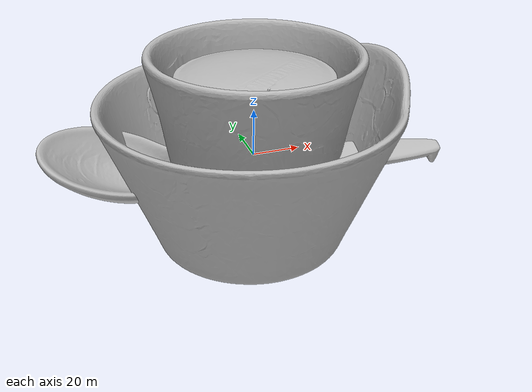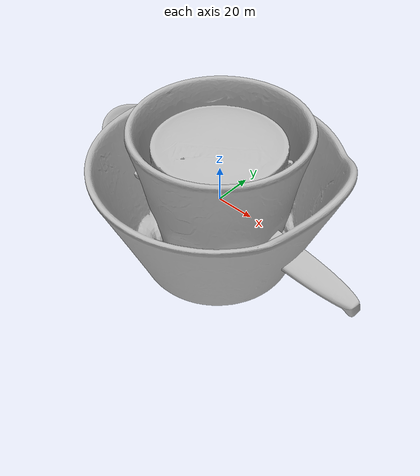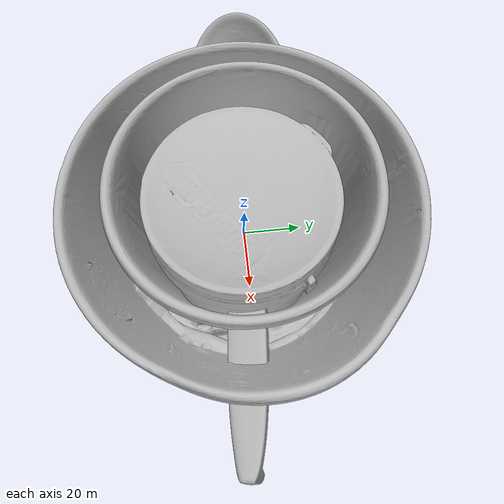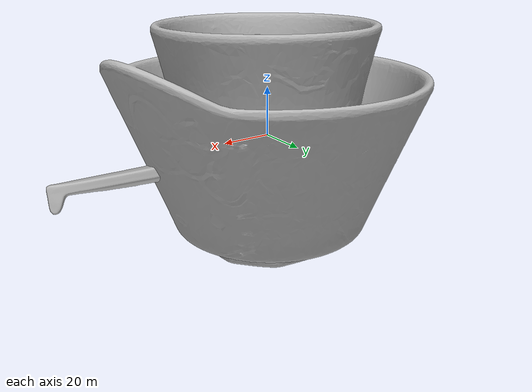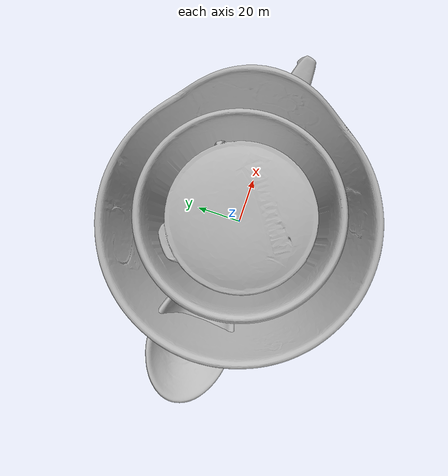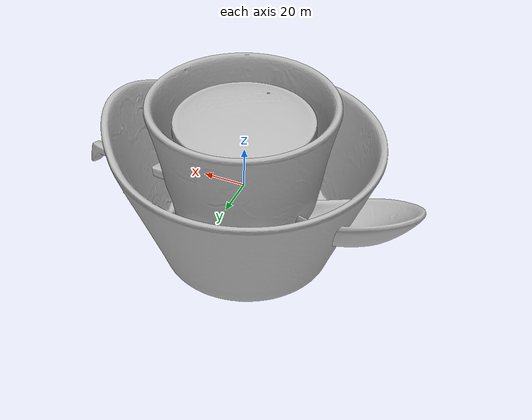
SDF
<sdf version="1.4">
 <world name="default">
  <light name="light1" type="point">
   <pose>0 0 1 0 0 0</pose>
   <diffuse>3 3 3 1</diffuse>
   <specular>3 3 3 1</specular>
  </light>
  <light name="light2" type="point">
   <pose>0 0.5 2 0 0 0</pose>
   <diffuse>1 1 1 1</diffuse>
   <specular>1 1 1 1</specular>
  </light>
  <light name="light3" type="point">
   <pose>0 0.5 2 0 0 0</pose>
   <diffuse>3 3 3 1</diffuse>
   <specular>3 3 3 1</specular>
  </light>
  <scene><ambient>0.7 0.7 0.7</ambient></scene>
  <model name="bottle1">
   <link name="link_bottle1">
    <collision name="default">
     <geometry>
      <mesh><uri>model://green_arrow/collision_meshes/collision.obj</uri><scale>1.0 1.0 1.0</scale></mesh>
     </geometry>
     <surface><friction><ode><mu>0.5</mu><mu2>0.5</mu2></ode></friction></surface>
    </collision>
    <visual name="default">
     <geometry>
      <mesh><uri>model://green_arrow/visual_meshes/visual.dae</uri><scale>1.0 1.0 1.0</scale></mesh>
     </geometry>
    </visual>
    <inertial>
     <mass>0.2764224410057068</mass>
     <pose>0.0005358477937988937 -0.0008270691032521427 0.002210969105362892 -0.06332196008274972 0.012988210902137025 0.674142157837799</pose>
     <inertia>
      <ixx>0.00020051825</ixx>
      <iyy>0.00020021446</iyy>
      <izz>0.00012947427</izz>
      <ixy>0</ixy>
      <ixz>0</ixz>
      <iyz>0</iyz>
     </inertia>
    </inertial>
   </link>
   <pose>-0.21913212537765503 0.2185036838054657 0.03903084248304367 0.038517866820472875 0.024628368116981606 -0.0546192292134954</pose>
  </model>
  <model name="bottle2">
   <link name="link_bottle2">
    <collision name="default">
     <geometry>
      <mesh><uri>model://pure_zhen/collision_meshes/collision.obj</uri><scale>1.0 1.0 1.0</scale></mesh>
     </geometry>
     <surface><friction><ode><mu>0.5</mu><mu2>0.5</mu2></ode></friction></surface>
    </collision>
    <visual name="default">
     <geometry>
      <mesh><uri>model://pure_zhen/visual_meshes/visual.dae</uri><scale>1.0 1.0 1.0</scale></mesh>
     </geometry>
    </visual>
    <inertial>
     <mass>0.2372884750366211</mass>
     <pose>-8.582299778936431e-05 0.0002452346670906991 -0.0015797418309375644 -0.027641670524606855 0.005623077019143168 0.30585846122319743</pose>
     <inertia>
      <ixx>0.0007112664</ixx>
      <iyy>0.00071145216</iyy>
      <izz>7.51383e-05</izz>
      <ixy>0</ixy>
      <ixz>0</ixz>
      <iyz>0</iyz>
     </inertia>
    </inertial>
   </link>
   <pose>-0.0996500551700592 0.2980712056159973 0.09196051955223083 0.016287257395772754 0.00474093992214944 -0.02756258308322471</pose>
  </model>
  <model name="silverware1">
   <link name="link_silverware1">
    <collision name="default">
     <geometry>
      <mesh><uri>model://doraemon_spoon/collision_meshes/collision.obj</uri><scale>1.0 1.0 1.0</scale></mesh>
     </geometry>
     <surface><friction><ode><mu>0.5</mu><mu2>0.5</mu2></ode></friction></surface>
    </collision>
    <visual name="default">
     <geometry>
      <mesh><uri>model://doraemon_spoon/visual_meshes/visual.dae</uri><scale>1.0 1.0 1.0</scale></mesh>
     </geometry>
    </visual>
    <inertial>
     <mass>0.020818473771214485</mass>
     <pose>-0.022165074944496155 -0.0006374582881107926 -0.0033325462136417627 -0.009147017253597407 0.0738041759980984 -0.014123826591698564</pose>
     <inertia>
      <ixx>1.6307007e-06</ixx>
      <iyy>4.631433e-05</iyy>
      <izz>4.7101734e-05</izz>
      <ixy>0</ixy>
      <ixz>0</ixz>
      <iyz>0</iyz>
     </inertia>
    </inertial>
   </link>
   <pose>0.2595430016517639 0.29605358839035034 0.014739323407411575 0.2790201917183139 -0.010337279083151275 -0.08270133097365712</pose>
  </model>
  <model name="stationery1">
   <link name="link_stationery1">
    <collision name="default">
     <geometry>
      <mesh><uri>model://correction_fuid/collision_meshes/collision.obj</uri><scale>1.0 1.0 1.0</scale></mesh>
     </geometry>
     <surface><friction><ode><mu>0.5</mu><mu2>0.5</mu2></ode></friction></surface>
    </collision>
    <visual name="default">
     <geometry>
      <mesh><uri>model://correction_fuid/visual_meshes/visual.dae</uri><scale>1.0 1.0 1.0</scale></mesh>
     </geometry>
    </visual>
    <inertial>
     <mass>0.03337494283914566</mass>
     <pose>-0.00012557735317386687 -0.0009722886024974287 -0.001618212671019137 -0.010846603423614418 0.019488389217657873 -0.01599245375892703</pose>
     <inertia>
      <ixx>3.2324202e-05</ixx>
      <iyy>1.9563013e-06</iyy>
      <izz>3.3165503e-05</izz>
      <ixy>0</ixy>
      <ixz>0</ixz>
      <iyz>0</iyz>
     </inertia>
    </inertial>
   </link>
   <pose>0.1295415312051773 0.3499889671802521 0.009632830508053303 -0.0017271991764432788 -0.056167473275818044 0.054507612450794295</pose>
  </model>
  <model name="bowl1">
   <link name="link_bowl1">
    <collision name="default">
     <geometry>
      <mesh><uri>model://hello_kitty_bowl/collision_meshes/collision.obj</uri><scale>1.0 1.0 1.0</scale></mesh>
     </geometry>
     <surface><friction><ode><mu>0.5</mu><mu2>0.5</mu2></ode></friction></surface>
    </collision>
    <visual name="default">
     <geometry>
      <mesh><uri>model://hello_kitty_bowl/visual_meshes/visual.dae</uri><scale>1.0 1.0 1.0</scale></mesh>
     </geometry>
    </visual>
    <inertial>
     <mass>0.11590971797704697</mass>
     <pose>-0.0015402117278426886 0.0004577837826218456 -0.0080512510612607 0.004152729053700843 -0.12227221811834889 0.04345084117661168</pose>
     <inertia>
      <ixx>0.00017210246</ixx>
      <iyy>0.00018182951</iyy>
      <izz>0.00025734986</izz>
      <ixy>0</ixy>
      <ixz>0</ixz>
      <iyz>0</iyz>
     </inertia>
    </inertial>
   </link>
   <pose>0.23999923467636108 -0.2799653112888336 0.03741253912448883 0.000276840741614021 -3.2455391435217844e-05 1.206197779426873e-06</pose>
  </model>
  <model name="cup1">
   <link name="link_cup1">
    <collision name="default">
     <geometry>
      <mesh><uri>model://hello_kitty_cup/collision_meshes/collision.obj</uri><scale>1.0 1.0 1.0</scale></mesh>
     </geometry>
     <surface><friction><ode><mu>0.5</mu><mu2>0.5</mu2></ode></friction></surface>
    </collision>
    <visual name="default">
     <geometry>
      <mesh><uri>model://hello_kitty_cup/visual_meshes/visual.dae</uri><scale>1.0 1.0 1.0</scale></mesh>
     </geometry>
    </visual>
    <inertial>
     <mass>0.06483803689479828</mass>
     <pose>0.00027251249412074685 0.0002795030304696411 0.003044978016987443 0.05779149237921037 0.007964744961503711 -0.020451485374324563</pose>
     <inertia>
      <ixx>8.928983e-05</ixx>
      <iyy>9.0285175e-05</iyy>
      <izz>7.52867e-05</izz>
      <ixy>0</ixy>
      <ixz>0</ixz>
      <iyz>0</iyz>
     </inertia>
    </inertial>
   </link>
   <pose>0.11040609329938889 -0.3796144425868988 0.046216294169425964 -0.005880023970562482 0.01079461299519875 -3.4257421871194277e-05</pose>
  </model>
  <model name="plate1">
   <link name="link_plate1">
    <collision name="default">
     <geometry>
      <mesh><uri>model://hello_kitty_plate/collision_meshes/collision.obj</uri><scale>1.0 1.0 1.0</scale></mesh>
     </geometry>
     <surface><friction><ode><mu>0.5</mu><mu2>0.5</mu2></ode></friction></surface>
    </collision>
    <visual name="default">
     <geometry>
      <mesh><uri>model://hello_kitty_plate/visual_meshes/visual.dae</uri><scale>1.0 1.0 1.0</scale></mesh>
     </geometry>
    </visual>
    <inertial>
     <mass>0.035439908504486084</mass>
     <pose>0.007314295507967472 0.00028937257593497634 -0.0027947179041802883 -0.00010432032854243346 -0.007054443681780748 -0.014449040989024118</pose>
     <inertia>
      <ixx>6.833875e-05</ixx>
      <iyy>0.00012897578</iyy>
      <izz>0.00019583687</izz>
      <ixy>0</ixy>
      <ixz>0</ixz>
      <iyz>0</iyz>
     </inertia>
    </inertial>
   </link>
   <pose>0.2700299024581909 -0.11004216969013214 0.008291450329124928 0.0004660591840154453 0.00417332815470697 -2.6005775058145558e-06</pose>
  </model>
  <model name="box4">
   <link name="link_box4">
    <collision name="default">
     <geometry>
      <mesh><uri>model://wooden_puzzle1/collision_meshes/collision.obj</uri><scale>1.0 1.0 1.0</scale></mesh>
     </geometry>
     <surface><friction><ode><mu>0.5</mu><mu2>0.5</mu2></ode></friction></surface>
    </collision>
    <visual name="default">
     <geometry>
      <mesh><uri>model://wooden_puzzle1/visual_meshes/visual.dae</uri><scale>1.0 1.0 1.0</scale></mesh>
     </geometry>
    </visual>
    <inertial>
     <mass>0.022725893184542656</mass>
     <pose>-0.00017350679263472557 7.972260937094688e-05 -9.191554272547364e-05 -0.07784633272711022 -0.26361483493671084 -0.5528696267966513</pose>
     <inertia>
      <ixx>4.2877546e-06</ixx>
      <iyy>4.205213e-06</iyy>
      <izz>4.2553816e-06</izz>
      <ixy>0</ixy>
      <ixz>0</ixz>
      <iyz>0</iyz>
     </inertia>
    </inertial>
   </link>
   <pose>0.07000666856765747 -0.22000624239444733 0.016866670921444893 0.0061902340711650254 -0.009709404762203867 -0.00013510141595335254</pose>
  </model>
 </world>
</sdf>
